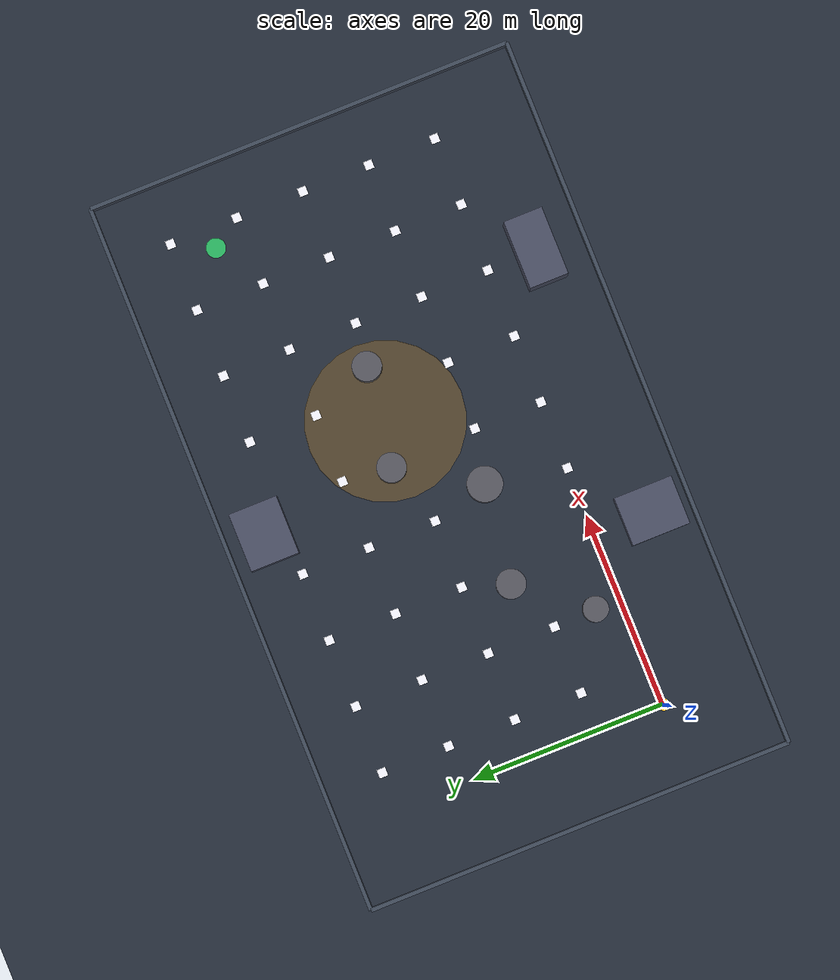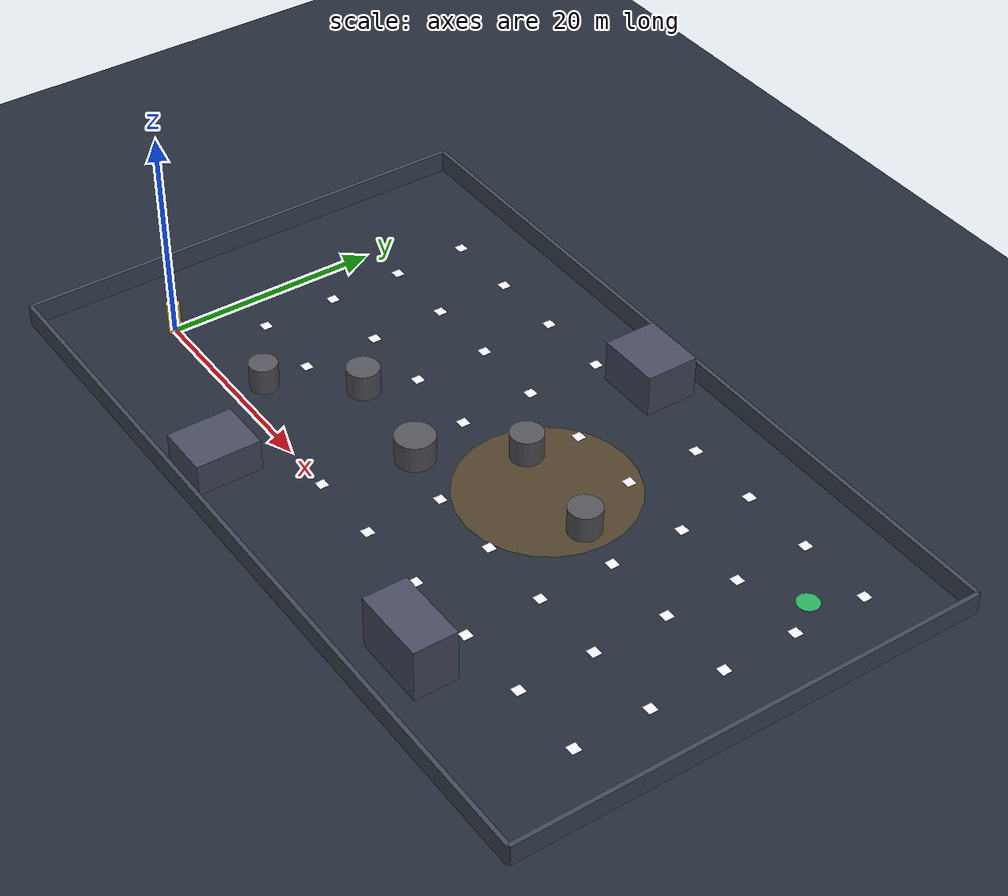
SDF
<?xml version="1.0" ?>
<!-- GENERATED by tools/gen_arena_world.py -- do not edit by hand. -->
<sdf version="1.6">
  <world name="frugalnav_arena">
    <gravity>0 0 -9.81</gravity>
    <scene>
      <ambient>0.45 0.47 0.5 1</ambient><background>0.62 0.66 0.72 1</background>
      <shadows>true</shadows>
      <fog><color>0.66 0.69 0.74 1</color><type>linear</type><start>18</start><end>85</end><density>0.02</density></fog>
    </scene>
    <light name="sun" type="directional"><cast_shadows>true</cast_shadows>
      <pose>0 0 40 0 0 0</pose><diffuse>0.9 0.9 0.9 1</diffuse>
      <specular>0.2 0.2 0.2 1</specular><direction>-0.4 0.3 -0.9</direction></light>
    <model name="ground"><static>true</static><link name="link">
      <collision name="c"><geometry><plane><normal>0 0 1</normal><size>300 300</size></plane></geometry></collision>
      <visual name="v"><geometry><plane><normal>0 0 1</normal><size>300 300</size></plane></geometry>
      <material><ambient>0.10 0.12 0.16 1</ambient><diffuse>0.14 0.17 0.22 1</diffuse></material></visual></link></model>
    <model name="wall_s"><static>true</static><pose>29.0 -10.0 1.0 0 0 0</pose>
      <link name="l"><collision name="c"><geometry><box><size>74.0 0.4 2.0</size></box></geometry></collision>
      <visual name="v"><geometry><box><size>74.0 0.4 2.0</size></box></geometry>
      <material><ambient>0.20 0.24 0.30 1</ambient><diffuse>0.24 0.28 0.34 1</diffuse></material></visual></link></model>
    <model name="wall_n"><static>true</static><pose>29.0 34.0 1.0 0 0 0</pose>
      <link name="l"><collision name="c"><geometry><box><size>74.0 0.4 2.0</size></box></geometry></collision>
      <visual name="v"><geometry><box><size>74.0 0.4 2.0</size></box></geometry>
      <material><ambient>0.20 0.24 0.30 1</ambient><diffuse>0.24 0.28 0.34 1</diffuse></material></visual></link></model>
    <model name="wall_w"><static>true</static><pose>-8.0 12.0 1.0 0 0 0</pose>
      <link name="l"><collision name="c"><geometry><box><size>0.4 44.0 2.0</size></box></geometry></collision>
      <visual name="v"><geometry><box><size>0.4 44.0 2.0</size></box></geometry>
      <material><ambient>0.20 0.24 0.30 1</ambient><diffuse>0.24 0.28 0.34 1</diffuse></material></visual></link></model>
    <model name="wall_e"><static>true</static><pose>66.0 12.0 1.0 0 0 0</pose>
      <link name="l"><collision name="c"><geometry><box><size>0.4 44.0 2.0</size></box></geometry></collision>
      <visual name="v"><geometry><box><size>0.4 44.0 2.0</size></box></geometry>
      <material><ambient>0.20 0.24 0.30 1</ambient><diffuse>0.24 0.28 0.34 1</diffuse></material></visual></link></model>
    <model name="hard_patch"><static>true</static><pose>35.960 14.880 0.02 0 0 0</pose>
      <link name="l"><visual name="v"><geometry><cylinder><radius>8.0</radius><length>0.02</length></cylinder></geometry>
      <material><ambient>0.96 0.62 0.04 0.22</ambient><diffuse>0.96 0.62 0.04 0.22</diffuse></material></visual></link></model>
    <model name="pillar0"><static>true</static><pose>41.518 14.582 1.25 0 0 0</pose>
      <link name="l"><collision name="c"><geometry><cylinder><radius>1.5</radius><length>2.5</length></cylinder></geometry></collision>
      <visual name="v"><geometry><cylinder><radius>1.5</radius><length>2.5</length></cylinder></geometry>
      <material><ambient>0.33 0.33 0.36 1</ambient><diffuse>0.33 0.33 0.36 1</diffuse></material></visual></link></model>
    <model name="pillar1"><static>true</static><pose>31.409 16.027 1.25 0 0 0</pose>
      <link name="l"><collision name="c"><geometry><cylinder><radius>1.5</radius><length>2.5</length></cylinder></geometry></collision>
      <visual name="v"><geometry><cylinder><radius>1.5</radius><length>2.5</length></cylinder></geometry>
      <material><ambient>0.33 0.33 0.36 1</ambient><diffuse>0.33 0.33 0.36 1</diffuse></material></visual></link></model>
    <model name="pillar2"><static>true</static><pose>26.514 8.158 1.25 0 0 0</pose>
      <link name="l"><collision name="c"><geometry><cylinder><radius>1.8</radius><length>2.5</length></cylinder></geometry></collision>
      <visual name="v"><geometry><cylinder><radius>1.8</radius><length>2.5</length></cylinder></geometry>
      <material><ambient>0.33 0.33 0.36 1</ambient><diffuse>0.33 0.33 0.36 1</diffuse></material></visual></link></model>
    <model name="pillar3"><static>true</static><pose>16.482 9.418 1.25 0 0 0</pose>
      <link name="l"><collision name="c"><geometry><cylinder><radius>1.5</radius><length>2.5</length></cylinder></geometry></collision>
      <visual name="v"><geometry><cylinder><radius>1.5</radius><length>2.5</length></cylinder></geometry>
      <material><ambient>0.33 0.33 0.36 1</ambient><diffuse>0.33 0.33 0.36 1</diffuse></material></visual></link></model>
    <model name="pillar4"><static>true</static><pose>11.128 2.657 1.25 0 0 0</pose>
      <link name="l"><collision name="c"><geometry><cylinder><radius>1.3</radius><length>2.5</length></cylinder></geometry></collision>
      <visual name="v"><geometry><cylinder><radius>1.3</radius><length>2.5</length></cylinder></geometry>
      <material><ambient>0.33 0.33 0.36 1</ambient><diffuse>0.33 0.33 0.36 1</diffuse></material></visual></link></model>
    <model name="building0"><static>true</static><pose>30.0 30.0 2.0 0 0 0</pose>
      <link name="l"><collision name="c"><geometry><box><size>6.0 5.0 4.0</size></box></geometry></collision>
      <visual name="v"><geometry><box><size>6.0 5.0 4.0</size></box></geometry>
      <material><ambient>0.28 0.3 0.38 1</ambient><diffuse>0.28 0.3 0.38 1</diffuse></material></visual></link></model>
    <model name="building1"><static>true</static><pose>18.0 -6.0 1.5 0 0 0</pose>
      <link name="l"><collision name="c"><geometry><box><size>5.0 6.0 3.0</size></box></geometry></collision>
      <visual name="v"><geometry><box><size>5.0 6.0 3.0</size></box></geometry>
      <material><ambient>0.28 0.3 0.38 1</ambient><diffuse>0.28 0.3 0.38 1</diffuse></material></visual></link></model>
    <model name="building2"><static>true</static><pose>46.0 -5.0 2.5 0 0 0</pose>
      <link name="l"><collision name="c"><geometry><box><size>7.0 4.0 5.0</size></box></geometry></collision>
      <visual name="v"><geometry><box><size>7.0 4.0 5.0</size></box></geometry>
      <material><ambient>0.28 0.3 0.38 1</ambient><diffuse>0.28 0.3 0.38 1</diffuse></material></visual></link></model>
    <model name="marker0"><static>true</static><pose>4.000 0.000 0.03 0 0 0</pose>
      <link name="l"><visual name="v"><geometry><box><size>0.9 0.9 0.05</size></box></geometry>
      <material><ambient>0.95 0.95 0.98 1</ambient></material></visual></link></model>
    <model name="marker1"><static>true</static><pose>4.000 7.000 0.03 0 0 0</pose>
      <link name="l"><visual name="v"><geometry><box><size>0.9 0.9 0.05</size></box></geometry>
      <material><ambient>0.95 0.95 0.98 1</ambient></material></visual></link></model>
    <model name="marker2"><static>true</static><pose>4.000 14.000 0.03 0 0 0</pose>
      <link name="l"><visual name="v"><geometry><box><size>0.9 0.9 0.05</size></box></geometry>
      <material><ambient>0.95 0.95 0.98 1</ambient></material></visual></link></model>
    <model name="marker3"><static>true</static><pose>4.000 21.000 0.03 0 0 0</pose>
      <link name="l"><visual name="v"><geometry><box><size>0.9 0.9 0.05</size></box></geometry>
      <material><ambient>0.95 0.95 0.98 1</ambient></material></visual></link></model>
    <model name="marker4"><static>true</static><pose>4.000 28.000 0.03 0 0 0</pose>
      <link name="l"><visual name="v"><geometry><box><size>0.9 0.9 0.05</size></box></geometry>
      <material><ambient>0.95 0.95 0.98 1</ambient></material></visual></link></model>
    <model name="marker5"><static>true</static><pose>11.000 7.000 0.03 0 0 0</pose>
      <link name="l"><visual name="v"><geometry><box><size>0.9 0.9 0.05</size></box></geometry>
      <material><ambient>0.95 0.95 0.98 1</ambient></material></visual></link></model>
    <model name="marker6"><static>true</static><pose>11.000 14.000 0.03 0 0 0</pose>
      <link name="l"><visual name="v"><geometry><box><size>0.9 0.9 0.05</size></box></geometry>
      <material><ambient>0.95 0.95 0.98 1</ambient></material></visual></link></model>
    <model name="marker7"><static>true</static><pose>11.000 21.000 0.03 0 0 0</pose>
      <link name="l"><visual name="v"><geometry><box><size>0.9 0.9 0.05</size></box></geometry>
      <material><ambient>0.95 0.95 0.98 1</ambient></material></visual></link></model>
    <model name="marker8"><static>true</static><pose>11.000 28.000 0.03 0 0 0</pose>
      <link name="l"><visual name="v"><geometry><box><size>0.9 0.9 0.05</size></box></geometry>
      <material><ambient>0.95 0.95 0.98 1</ambient></material></visual></link></model>
    <model name="marker9"><static>true</static><pose>18.000 0.000 0.03 0 0 0</pose>
      <link name="l"><visual name="v"><geometry><box><size>0.9 0.9 0.05</size></box></geometry>
      <material><ambient>0.95 0.95 0.98 1</ambient></material></visual></link></model>
    <model name="marker10"><static>true</static><pose>18.000 14.000 0.03 0 0 0</pose>
      <link name="l"><visual name="v"><geometry><box><size>0.9 0.9 0.05</size></box></geometry>
      <material><ambient>0.95 0.95 0.98 1</ambient></material></visual></link></model>
    <model name="marker11"><static>true</static><pose>18.000 21.000 0.03 0 0 0</pose>
      <link name="l"><visual name="v"><geometry><box><size>0.9 0.9 0.05</size></box></geometry>
      <material><ambient>0.95 0.95 0.98 1</ambient></material></visual></link></model>
    <model name="marker12"><static>true</static><pose>18.000 28.000 0.03 0 0 0</pose>
      <link name="l"><visual name="v"><geometry><box><size>0.9 0.9 0.05</size></box></geometry>
      <material><ambient>0.95 0.95 0.98 1</ambient></material></visual></link></model>
    <model name="marker13"><static>true</static><pose>25.000 0.000 0.03 0 0 0</pose>
      <link name="l"><visual name="v"><geometry><box><size>0.9 0.9 0.05</size></box></geometry>
      <material><ambient>0.95 0.95 0.98 1</ambient></material></visual></link></model>
    <model name="marker14"><static>true</static><pose>25.000 14.000 0.03 0 0 0</pose>
      <link name="l"><visual name="v"><geometry><box><size>0.9 0.9 0.05</size></box></geometry>
      <material><ambient>0.95 0.95 0.98 1</ambient></material></visual></link></model>
    <model name="marker15"><static>true</static><pose>25.000 21.000 0.03 0 0 0</pose>
      <link name="l"><visual name="v"><geometry><box><size>0.9 0.9 0.05</size></box></geometry>
      <material><ambient>0.95 0.95 0.98 1</ambient></material></visual></link></model>
    <model name="marker16"><static>true</static><pose>25.000 28.000 0.03 0 0 0</pose>
      <link name="l"><visual name="v"><geometry><box><size>0.9 0.9 0.05</size></box></geometry>
      <material><ambient>0.95 0.95 0.98 1</ambient></material></visual></link></model>
    <model name="marker17"><static>true</static><pose>32.000 0.000 0.03 0 0 0</pose>
      <link name="l"><visual name="v"><geometry><box><size>0.9 0.9 0.05</size></box></geometry>
      <material><ambient>0.95 0.95 0.98 1</ambient></material></visual></link></model>
    <model name="marker18"><static>true</static><pose>32.000 7.000 0.03 0 0 0</pose>
      <link name="l"><visual name="v"><geometry><box><size>0.9 0.9 0.05</size></box></geometry>
      <material><ambient>0.95 0.95 0.98 1</ambient></material></visual></link></model>
    <model name="marker19"><static>true</static><pose>32.000 21.000 0.03 0 0 0</pose>
      <link name="l"><visual name="v"><geometry><box><size>0.9 0.9 0.05</size></box></geometry>
      <material><ambient>0.95 0.95 0.98 1</ambient></material></visual></link></model>
    <model name="marker20"><static>true</static><pose>32.000 28.000 0.03 0 0 0</pose>
      <link name="l"><visual name="v"><geometry><box><size>0.9 0.9 0.05</size></box></geometry>
      <material><ambient>0.95 0.95 0.98 1</ambient></material></visual></link></model>
    <model name="marker21"><static>true</static><pose>39.000 0.000 0.03 0 0 0</pose>
      <link name="l"><visual name="v"><geometry><box><size>0.9 0.9 0.05</size></box></geometry>
      <material><ambient>0.95 0.95 0.98 1</ambient></material></visual></link></model>
    <model name="marker22"><static>true</static><pose>39.000 7.000 0.03 0 0 0</pose>
      <link name="l"><visual name="v"><geometry><box><size>0.9 0.9 0.05</size></box></geometry>
      <material><ambient>0.95 0.95 0.98 1</ambient></material></visual></link></model>
    <model name="marker23"><static>true</static><pose>39.000 21.000 0.03 0 0 0</pose>
      <link name="l"><visual name="v"><geometry><box><size>0.9 0.9 0.05</size></box></geometry>
      <material><ambient>0.95 0.95 0.98 1</ambient></material></visual></link></model>
    <model name="marker24"><static>true</static><pose>39.000 28.000 0.03 0 0 0</pose>
      <link name="l"><visual name="v"><geometry><box><size>0.9 0.9 0.05</size></box></geometry>
      <material><ambient>0.95 0.95 0.98 1</ambient></material></visual></link></model>
    <model name="marker25"><static>true</static><pose>46.000 0.000 0.03 0 0 0</pose>
      <link name="l"><visual name="v"><geometry><box><size>0.9 0.9 0.05</size></box></geometry>
      <material><ambient>0.95 0.95 0.98 1</ambient></material></visual></link></model>
    <model name="marker26"><static>true</static><pose>46.000 7.000 0.03 0 0 0</pose>
      <link name="l"><visual name="v"><geometry><box><size>0.9 0.9 0.05</size></box></geometry>
      <material><ambient>0.95 0.95 0.98 1</ambient></material></visual></link></model>
    <model name="marker27"><static>true</static><pose>46.000 14.000 0.03 0 0 0</pose>
      <link name="l"><visual name="v"><geometry><box><size>0.9 0.9 0.05</size></box></geometry>
      <material><ambient>0.95 0.95 0.98 1</ambient></material></visual></link></model>
    <model name="marker28"><static>true</static><pose>46.000 21.000 0.03 0 0 0</pose>
      <link name="l"><visual name="v"><geometry><box><size>0.9 0.9 0.05</size></box></geometry>
      <material><ambient>0.95 0.95 0.98 1</ambient></material></visual></link></model>
    <model name="marker29"><static>true</static><pose>46.000 28.000 0.03 0 0 0</pose>
      <link name="l"><visual name="v"><geometry><box><size>0.9 0.9 0.05</size></box></geometry>
      <material><ambient>0.95 0.95 0.98 1</ambient></material></visual></link></model>
    <model name="marker30"><static>true</static><pose>53.000 0.000 0.03 0 0 0</pose>
      <link name="l"><visual name="v"><geometry><box><size>0.9 0.9 0.05</size></box></geometry>
      <material><ambient>0.95 0.95 0.98 1</ambient></material></visual></link></model>
    <model name="marker31"><static>true</static><pose>53.000 7.000 0.03 0 0 0</pose>
      <link name="l"><visual name="v"><geometry><box><size>0.9 0.9 0.05</size></box></geometry>
      <material><ambient>0.95 0.95 0.98 1</ambient></material></visual></link></model>
    <model name="marker32"><static>true</static><pose>53.000 14.000 0.03 0 0 0</pose>
      <link name="l"><visual name="v"><geometry><box><size>0.9 0.9 0.05</size></box></geometry>
      <material><ambient>0.95 0.95 0.98 1</ambient></material></visual></link></model>
    <model name="marker33"><static>true</static><pose>53.000 21.000 0.03 0 0 0</pose>
      <link name="l"><visual name="v"><geometry><box><size>0.9 0.9 0.05</size></box></geometry>
      <material><ambient>0.95 0.95 0.98 1</ambient></material></visual></link></model>
    <model name="marker34"><static>true</static><pose>53.000 28.000 0.03 0 0 0</pose>
      <link name="l"><visual name="v"><geometry><box><size>0.9 0.9 0.05</size></box></geometry>
      <material><ambient>0.95 0.95 0.98 1</ambient></material></visual></link></model>
    <model name="marker35"><static>true</static><pose>60.000 0.000 0.03 0 0 0</pose>
      <link name="l"><visual name="v"><geometry><box><size>0.9 0.9 0.05</size></box></geometry>
      <material><ambient>0.95 0.95 0.98 1</ambient></material></visual></link></model>
    <model name="marker36"><static>true</static><pose>60.000 7.000 0.03 0 0 0</pose>
      <link name="l"><visual name="v"><geometry><box><size>0.9 0.9 0.05</size></box></geometry>
      <material><ambient>0.95 0.95 0.98 1</ambient></material></visual></link></model>
    <model name="marker37"><static>true</static><pose>60.000 14.000 0.03 0 0 0</pose>
      <link name="l"><visual name="v"><geometry><box><size>0.9 0.9 0.05</size></box></geometry>
      <material><ambient>0.95 0.95 0.98 1</ambient></material></visual></link></model>
    <model name="marker38"><static>true</static><pose>60.000 21.000 0.03 0 0 0</pose>
      <link name="l"><visual name="v"><geometry><box><size>0.9 0.9 0.05</size></box></geometry>
      <material><ambient>0.95 0.95 0.98 1</ambient></material></visual></link></model>
    <model name="marker39"><static>true</static><pose>60.000 28.000 0.03 0 0 0</pose>
      <link name="l"><visual name="v"><geometry><box><size>0.9 0.9 0.05</size></box></geometry>
      <material><ambient>0.95 0.95 0.98 1</ambient></material></visual></link></model>
    <model name="target_B"><static>true</static><pose>0.000 0.000 1.5 0 0 0</pose>
      <link name="l"><collision name="c"><geometry><cylinder><radius>0.6</radius><length>3.0</length></cylinder></geometry></collision>
      <visual name="v"><geometry><cylinder><radius>0.6</radius><length>3.0</length></cylinder></geometry>
      <material><ambient>0.98 0.75 0.14 1</ambient><diffuse>0.98 0.75 0.14 1</diffuse></material></visual></link></model>
    <model name="start_pad"><static>true</static><pose>58.000 24.000 0.02 0 0 0</pose>
      <link name="l"><collision name="c"><geometry><cylinder><radius>1.0</radius><length>0.04</length></cylinder></geometry></collision>
      <visual name="v"><geometry><cylinder><radius>1.0</radius><length>0.04</length></cylinder></geometry>
      <material><ambient>0.2 0.83 0.44 0.85</ambient><diffuse>0.2 0.83 0.44 0.85</diffuse></material></visual></link></model>
    <!-- services for teleport / reset -->
    <plugin name="gazebo_ros_state" filename="libgazebo_ros_state.so">
      <ros><namespace>/gazebo</namespace></ros><update_rate>0.0</update_rate>
    </plugin>
    <physics name="ode" type="ode"><max_step_size>0.004</max_step_size>
      <real_time_update_rate>250</real_time_update_rate></physics>
  </world>
</sdf>
